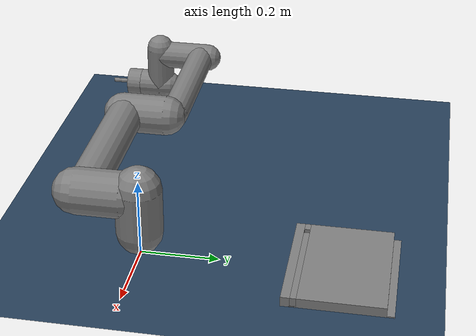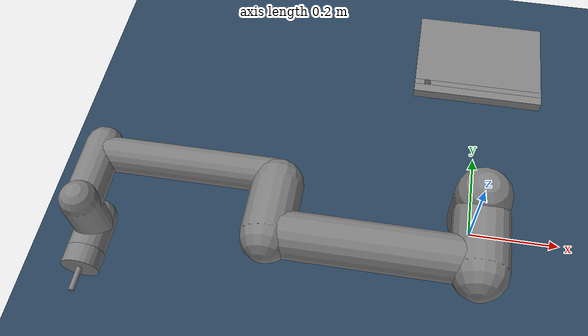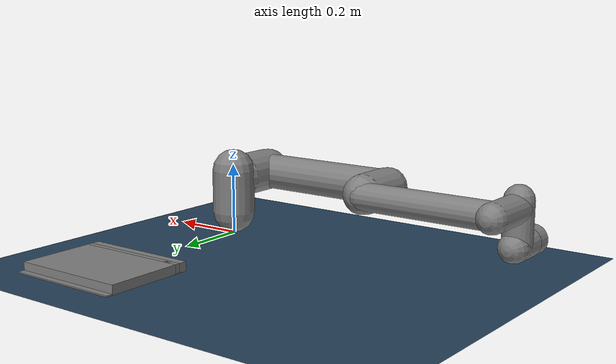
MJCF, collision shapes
<mujoco model="peg in hole scene">
  <include file="ur5e_peg_in_hole.xml"/>

  <statistic center="0.3 0 0.4" extent="0.8"/>

  <visual>
    <headlight diffuse="0.6 0.6 0.6" ambient="0.1 0.1 0.1" specular="0 0 0"/>
    <rgba haze="0.15 0.25 0.35 1"/>
    <global azimuth="120" elevation="-20"/>
  </visual>

  <asset>
    <texture type="skybox" builtin="gradient" rgb1="0.3 0.5 0.7" rgb2="0 0 0" width="512" height="3072"/>
    <texture type="2d" name="groundplane" builtin="checker" mark="edge" rgb1="0.2 0.3 0.4" rgb2="0.1 0.2 0.3"
      markrgb="0.8 0.8 0.8" width="300" height="300"/>
    <material name="groundplane" texture="groundplane" texuniform="true" texrepeat="5 5" reflectance="0.2"/>

    <mesh name="board" file="peg_in_hole/task_board_meshes/nist_atb_m1.stl" scale="0.01 0.01 0.01"/>
  </asset>

  <worldbody>
    <camera name="top" pos="0.0 1.2 0.5" xyaxes="-1.0 0.0 0.0 0.0 -0.40 1.0"/>
    <light pos="0 0 1.5" dir="0 0 -1" directional="true"/>
    <geom name="floor" size="0 0 0.05" type="plane" material="groundplane"/>

    <body name="task_board" mocap="true" pos="0 0.5 0" euler="0 0 0">
      <geom type="mesh" mesh="board" pos="0 0 0" euler="0 0 0" material="acrylic" class="visual"/>
      <geom type="box" size="0.16 0.106265 0.0127" pos="0 0.018735 0.0127" euler="0 0 0" group="3"/>
      <geom type="box" size="0.16 0.011235 0.0127" pos="0 -0.113765 0.0127" euler="0 0 0" group="3"/>

      <geom type="box" size="0.012331 0.0075 0.0127" pos="-0.147669 -0.09503 0.0127" euler="0 0 0" group="3"/>
      <geom type="box" size="0.140169 0.0075 0.0127" pos="0.019831 -0.09503 0.0127" euler="0 0 0" group="3"/>
      <geom type="box" size="0.16 0.125 0.00163" pos="0 0.018735 0.00163" euler="0 0 0" group="3"/>
      <site name="bottom_of_hole" size="0.01" pos="-0.127838 -0.09503 0.003" quat="1 0 0 0" rgba="1 0.0 0.0 1" group="4"/>
    </body>
  </worldbody>
</mujoco>

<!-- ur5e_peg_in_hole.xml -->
<mujoco model="ur5e">
  <compiler angle="radian" autolimits="true" meshdir=".."/>

  <option integrator="implicitfast"/>

  <default>
    <default class="ur5e">
      <material specular="0.5" shininess="0.25"/>
      <joint axis="0 1 0" range="-6.28319 6.28319" armature="0.1"/>
      <general gaintype="fixed" biastype="affine" ctrlrange="-6.2831 6.2831" gainprm="2000" biasprm="0 -2000 -400"
        forcerange="-150 150"/>
      <default class="size3">
        <default class="size3_limited">
          <joint range="-3.1415 3.1415"/>
          <general ctrlrange="-3.1415 3.1415"/>
        </default>
      </default>
      <default class="size1">
        <general gainprm="500" biasprm="0 -500 -100" forcerange="-28 28"/>
      </default>
      <default class="visual">
        <geom type="mesh" contype="0" conaffinity="0" group="2"/>
      </default>
      <default class="collision">
        <geom type="capsule" group="3"/>
        <default class="eef_collision">
          <geom type="cylinder"/>
        </default>
      </default>
      <site size="0.001" rgba="0.5 0.5 0.5 0.3" group="4"/>
    </default>
  </default>

  <asset>
    <material class="ur5e" name="black" rgba="0.033 0.033 0.033 1"/>
    <material class="ur5e" name="jointgray" rgba="0.278 0.278 0.278 1"/>
    <material class="ur5e" name="linkgray" rgba="0.82 0.82 0.82 1"/>
    <material class="ur5e" name="urblue" rgba="0.49 0.678 0.8 1"/>
    <material name="acrylic" rgba="0.9 0.9 0.9 0.5" specular="0.5" shininess="0.25"/>
    <material name="steel" rgba="0.82 0.82 0.82 1" specular="0.5" shininess="0.25"/>

    <mesh file="ur5_assets/base_0.obj"/>
    <mesh file="ur5_assets/base_1.obj"/>
    <mesh file="ur5_assets/shoulder_0.obj"/>
    <mesh file="ur5_assets/shoulder_1.obj"/>
    <mesh file="ur5_assets/shoulder_2.obj"/>
    <mesh file="ur5_assets/upperarm_0.obj"/>
    <mesh file="ur5_assets/upperarm_1.obj"/>
    <mesh file="ur5_assets/upperarm_2.obj"/>
    <mesh file="ur5_assets/upperarm_3.obj"/>
    <mesh file="ur5_assets/forearm_0.obj"/>
    <mesh file="ur5_assets/forearm_1.obj"/>
    <mesh file="ur5_assets/forearm_2.obj"/>
    <mesh file="ur5_assets/forearm_3.obj"/>
    <mesh file="ur5_assets/wrist1_0.obj"/>
    <mesh file="ur5_assets/wrist1_1.obj"/>
    <mesh file="ur5_assets/wrist1_2.obj"/>
    <mesh file="ur5_assets/wrist2_0.obj"/>
    <mesh file="ur5_assets/wrist2_1.obj"/>
    <mesh file="ur5_assets/wrist2_2.obj"/>
    <mesh file="ur5_assets/wrist3.obj"/>

    <mesh name="cylinder_peg" file="peg_in_hole/task_board_meshes/atb_m1_cylinder_peg.stl" scale="0.01 0.01 0.01"/>
    <mesh name="hexagonal_peg" file="peg_in_hole/task_board_meshes/atb_m1_hexagonal_peg.stl" scale="0.01 0.01 0.01"/>
    <mesh name="l-shaped_peg" file="peg_in_hole/task_board_meshes/atb_m1_l-shaped_peg.stl" scale="0.01 0.01 0.01"/>
    <mesh name="rectangular_peg" file="peg_in_hole/task_board_meshes/atb_m1_rectangular_peg.stl" scale="0.01 0.01 0.01"/>
    <mesh name="triangular_peg" file="peg_in_hole/task_board_meshes/atb_m1_triangular_peg.stl" scale="0.01 0.01 0.01"/>
  </asset>

  <worldbody>
    <light name="spotlight" mode="targetbodycom" target="wrist_2_link" pos="0 -1 2"/>
    <body name="base" quat="0 0 0 -1" childclass="ur5e">
      <inertial mass="4.0" pos="0 0 0" diaginertia="0.00443333156 0.00443333156 0.0072"/>
      <geom mesh="base_0" material="black" class="visual"/>
      <geom mesh="base_1" material="jointgray" class="visual"/>
      <body name="shoulder_link" pos="0 0 0.163">
        <inertial mass="3.7" pos="0 0 0" diaginertia="0.0102675 0.0102675 0.00666"/>
        <joint name="shoulder_pan_joint" class="size3" axis="0 0 1"/>
        <geom mesh="shoulder_0" material="urblue" class="visual"/>
        <geom mesh="shoulder_1" material="black" class="visual"/>
        <geom mesh="shoulder_2" material="jointgray" class="visual"/>
        <geom class="collision" size="0.06 0.06" pos="0 0 -0.04"/>
        <body name="upper_arm_link" pos="0 0.138 0" quat="1 0 1 0">
          <inertial mass="8.393" pos="0 0 0.2125" diaginertia="0.133886 0.133886 0.0151074"/>
          <joint name="shoulder_lift_joint" class="size3"/>
          <geom mesh="upperarm_0" material="linkgray" class="visual"/>
          <geom mesh="upperarm_1" material="black" class="visual"/>
          <geom mesh="upperarm_2" material="jointgray" class="visual"/>
          <geom mesh="upperarm_3" material="urblue" class="visual"/>
          <geom class="collision" pos="0 -0.04 0" quat="1 1 0 0" size="0.06 0.06"/>
          <geom class="collision" size="0.05 0.2" pos="0 0 0.2"/>
          <body name="forearm_link" pos="0 -0.131 0.425">
            <inertial mass="2.275" pos="0 0 0.196" diaginertia="0.0311796 0.0311796 0.004095"/>
            <joint name="elbow_joint" class="size3_limited"/>
            <geom mesh="forearm_0" material="urblue" class="visual"/>
            <geom mesh="forearm_1" material="linkgray" class="visual"/>
            <geom mesh="forearm_2" material="black" class="visual"/>
            <geom mesh="forearm_3" material="jointgray" class="visual"/>
            <geom class="collision" pos="0 0.08 0" quat="1 1 0 0" size="0.055 0.06"/>
            <geom class="collision" size="0.038 0.19" pos="0 0 0.2"/>
            <body name="wrist_1_link" pos="0 0 0.392" quat="1 0 1 0">
              <inertial mass="1.219" pos="0 0.127 0" diaginertia="0.0025599 0.0025599 0.0021942"/>
              <joint name="wrist_1_joint" class="size1"/>
              <geom mesh="wrist1_0" material="black" class="visual"/>
              <geom mesh="wrist1_1" material="urblue" class="visual"/>
              <geom mesh="wrist1_2" material="jointgray" class="visual"/>
              <geom class="collision" pos="0 0.05 0" quat="1 1 0 0" size="0.04 0.07"/>
              <body name="wrist_2_link" pos="0 0.127 0">
                <inertial mass="1.219" pos="0 0 0.1" diaginertia="0.0025599 0.0025599 0.0021942"/>
                <joint name="wrist_2_joint" axis="0 0 1" class="size1"/>
                <geom mesh="wrist2_0" material="black" class="visual"/>
                <geom mesh="wrist2_1" material="urblue" class="visual"/>
                <geom mesh="wrist2_2" material="jointgray" class="visual"/>
                <geom class="collision" size="0.04 0.06" pos="0 0 0.04"/>
                <geom class="collision" pos="0 0.02 0.1" quat="1 1 0 0" size="0.04 0.04"/>
                <body name="wrist_3_link" pos="0 0 0.1">
                  <inertial mass="0.1889" pos="0 0.0771683 0" quat="1 0 0 1"
                    diaginertia="0.000132134 9.90863e-05 9.90863e-05"/>
                  <joint name="wrist_3_joint" class="size1"/>
                  <geom material="linkgray" mesh="wrist3" class="visual"/>
                  <geom class="eef_collision" pos="0 0.08 0" quat="1 1 0 0" size="0.04 0.02"/>
                  <site name="attachment_site" type="sphere" size="0.01" pos="0 0.1 0" quat="-1 1 0 0" rgba="0.5 0.5 0.5 1"/>
                  <body name="grasped_body" pos="0 0.1 0" quat="-1 1 0 0">
                    <geom type="mesh" mesh="cylinder_peg" material="steel" pos="0.197 0 0" class="visual"/>
                    <geom type="cylinder" size="0.006 0.025" pos="0 0 0.025" group="3"/>
                    <site name="peg_tip" size="0.01" pos="0 0 0.05" euler="3.14159 0 0" rgba="1 0.0 0.0 1" />
                    <!-- x= towards the base y = up from groundplane z = out of ee-->
                  </body>
                </body>
              </body>
            </body>
          </body>
        </body>
      </body>
    </body>
  </worldbody>

  <actuator>
    <general class="size3" name="shoulder_pan" joint="shoulder_pan_joint"/>
    <general class="size3" name="shoulder_lift" joint="shoulder_lift_joint"/>
    <general class="size3_limited" name="elbow" joint="elbow_joint"/>
    <general class="size1" name="wrist_1" joint="wrist_1_joint"/>
    <general class="size1" name="wrist_2" joint="wrist_2_joint"/>
    <general class="size1" name="wrist_3" joint="wrist_3_joint"/>
  </actuator>

  <keyframe>
    <key name="home"
    qpos="-1.5708 -1.5708 1.5708 -1.5708 -1.5708 0"
    qvel="0 0 0 0 0 0"
    ctrl="-1.5708 -1.5708 1.5708 -1.5708 -1.5708 0"/>
  </keyframe>
</mujoco>
